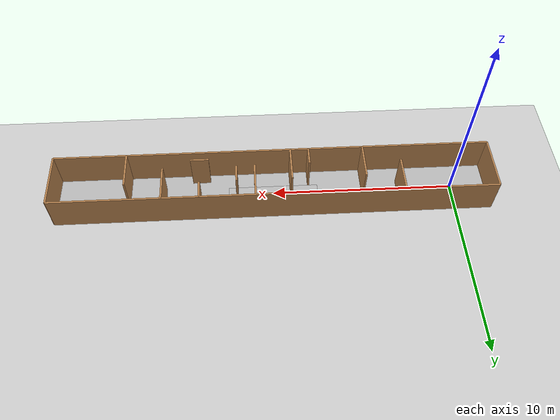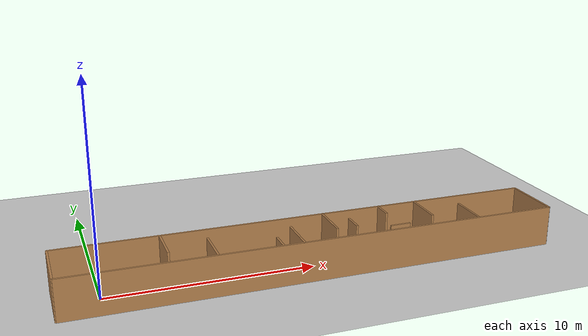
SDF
<sdf version="1.5">
 <world name="default">
  <physics type="ode">
   <gravity>0 0 -9.8066</gravity>
   <ode>
    <solver>
     <type>quick</type>
     <iters>10</iters>
     <sor>1.3</sor>
     <use_dynamic_moi_rescaling>0</use_dynamic_moi_rescaling>
    </solver>
    <constraints>
     <cfm>0.0</cfm>
     <erp>0.2</erp>
     <contact_max_correcting_vel>100</contact_max_correcting_vel>
     <contact_surface_layer>0.001</contact_surface_layer>
    </constraints>
   </ode>
   <max_step_size>0.004</max_step_size>
   <real_time_factor>1.0</real_time_factor>
   <real_time_update_rate>250</real_time_update_rate>
   <magnetic_field>6.0e-6 2.3e-5 -4.2e-5</magnetic_field>
  </physics>
  <light type="directional" name="sun">
   <cast_shadows>false</cast_shadows>
   <pose>0 0 100 0 0 0</pose>
   <diffuse>0.8 0.8 0.8 1</diffuse>
   <specular>0.9 0.9 0.9 1</specular>
   <attenuation>
    <range>1000</range>
    <constant>0.9</constant>
    <linear>0.01</linear>
    <quadratic>0.001</quadratic>
   </attenuation>
   <direction>0.2 0.2 -0.9</direction>
  </light>
  <include><uri>model://ground_plane</uri></include>
  <model name="texture">
   <static>true</static>
   <link name="lawn_ground">
    <pose>10.0 0.0 -0.01 0 0 0</pose>
    <visual name="visual">
     <cast_shadows>false</cast_shadows>
     <geometry><box><size>24 3 0.04</size></box></geometry>
     <material>
      <script>
       <uri>model://lawn_plane/materials/scripts</uri>
       <uri>model://lawn_plane/materials/textures</uri>
       <name>vrc/lawn</name>
      </script>
     </material>
    </visual>
   </link>
   <link name="sysu_logo">
    <pose>10.0 0.0 0.01 0 0 1.57</pose>
    <visual name="visual">
     <cast_shadows>false</cast_shadows>
     <geometry><box><size>1.0 5.0 0.01</size></box></geometry>
     <material><script><uri>model://texture_drl/texture.material</uri><name>ssse_logo</name></script></material>
    </visual>
   </link>
  </model>
  <model name="room_wall">
   <static>true</static>
   <link name="wall_front">
    <pose>22 0 1 0 -0 1.57</pose>
    <inertial><mass>2.0</mass></inertial>
    <collision name="collision"><geometry><box><size>3.0 0.1 2</size></box></geometry></collision>
    <visual name="visual">
     <geometry><box><size>3.0 0.1 2</size></box></geometry>
     <material>
      <script><uri>file://media/materials/scripts/gazebo.material</uri><name>Gazebo/Wood</name></script>
      <ambient>1 1 1 1</ambient>
     </material>
    </visual>
   </link>
   <link name="wall_back">
    <pose>-2 0 1 0 -0 1.57</pose>
    <inertial><mass>2.0</mass></inertial>
    <collision name="collision"><geometry><box><size>3.0 0.1 2</size></box></geometry></collision>
    <visual name="visual">
     <geometry><box><size>3.0 0.1 2</size></box></geometry>
     <material>
      <script><uri>file://media/materials/scripts/gazebo.material</uri><name>Gazebo/Wood</name></script>
      <ambient>1 1 1 1</ambient>
     </material>
    </visual>
   </link>
   <link name="wall_left">
    <pose>10 1.5 1 0 -0 0</pose>
    <inertial><mass>2.0</mass></inertial>
    <collision name="collision"><geometry><box><size>24.0 0.1 2</size></box></geometry></collision>
    <visual name="visual">
     <geometry><box><size>24.0 0.1 2</size></box></geometry>
     <material>
      <script><uri>file://media/materials/scripts/gazebo.material</uri><name>Gazebo/Wood</name></script>
      <ambient>1 1 1 1</ambient>
     </material>
    </visual>
   </link>
   <link name="wall_right">
    <pose>10.0 -1.5 1 0 -0 0</pose>
    <inertial><mass>2.0</mass></inertial>
    <collision name="collision"><geometry><box><size>24.0 0.1 2</size></box></geometry></collision>
    <visual name="visual">
     <geometry><box><size>24.0 0.1 2</size></box></geometry>
     <material>
      <script><uri>file://media/materials/scripts/gazebo.material</uri><name>Gazebo/Wood</name></script>
      <ambient>1 1 1 1</ambient>
     </material>
    </visual>
   </link>
  </model>
  <model name="obs_wall">
   <static>true</static>
   <link name="wall_1">
    <pose>3 0.5 1 0 -0 1.57</pose>
    <inertial><mass>2.0</mass></inertial>
    <collision name="collision"><geometry><box><size>2.0 0.1 2</size></box></geometry></collision>
    <visual name="visual">
     <geometry><box><size>2.0 0.1 2</size></box></geometry>
     <material>
      <script><uri>file://media/materials/scripts/gazebo.material</uri><name>Gazebo/Wood</name></script>
      <ambient>1 1 1 1</ambient>
     </material>
    </visual>
   </link>
   <link name="wall_2">
    <pose>5.0 -0.5 1 0 -0 1.57</pose>
    <inertial><mass>2.0</mass></inertial>
    <collision name="collision"><geometry><box><size>2.0 0.1 2</size></box></geometry></collision>
    <visual name="visual">
     <geometry><box><size>2.0 0.1 2</size></box></geometry>
     <material>
      <script><uri>file://media/materials/scripts/gazebo.material</uri><name>Gazebo/Wood</name></script>
      <ambient>1 1 1 1</ambient>
     </material>
    </visual>
   </link>
   <link name="wall_3">
    <pose>8 -1 1 0 -0 1.57</pose>
    <inertial><mass>2.0</mass></inertial>
    <collision name="collision"><geometry><box><size>1.0 0.1 2</size></box></geometry></collision>
    <visual name="visual">
     <geometry><box><size>1.0 0.1 2</size></box></geometry>
     <material>
      <script><uri>file://media/materials/scripts/gazebo.material</uri><name>Gazebo/Wood</name></script>
      <ambient>1 1 1 1</ambient>
     </material>
    </visual>
   </link>
   <link name="wall_4">
    <pose>9.0 -0.5 1 0 -0 1.57</pose>
    <inertial><mass>2.0</mass></inertial>
    <collision name="collision"><geometry><box><size>2.0 0.1 2</size></box></geometry></collision>
    <visual name="visual">
     <geometry><box><size>2.0 0.1 2</size></box></geometry>
     <material>
      <script><uri>file://media/materials/scripts/gazebo.material</uri><name>Gazebo/Wood</name></script>
      <ambient>1 1 1 1</ambient>
     </material>
    </visual>
   </link>
   <link name="wall_5">
    <pose>11 0.5 1 0 -0 1.57</pose>
    <inertial><mass>2.0</mass></inertial>
    <collision name="collision"><geometry><box><size>2.0 0.1 2</size></box></geometry></collision>
    <visual name="visual">
     <geometry><box><size>2.0 0.1 2</size></box></geometry>
     <material>
      <script><uri>file://media/materials/scripts/gazebo.material</uri><name>Gazebo/Wood</name></script>
      <ambient>1 1 1 1</ambient>
     </material>
    </visual>
   </link>
   <link name="wall_6">
    <pose>14 1 1 0 -0 1.57</pose>
    <inertial><mass>2.0</mass></inertial>
    <collision name="collision"><geometry><box><size>1.0 0.1 2</size></box></geometry></collision>
    <visual name="visual">
     <geometry><box><size>1.0 0.1 2</size></box></geometry>
     <material>
      <script><uri>file://media/materials/scripts/gazebo.material</uri><name>Gazebo/Wood</name></script>
      <ambient>1 1 1 1</ambient>
     </material>
    </visual>
   </link>
   <link name="wall_7">
    <pose>16 0.5 1 0 -0 1.57</pose>
    <inertial><mass>2.0</mass></inertial>
    <collision name="collision"><geometry><box><size>2.0 0.1 2</size></box></geometry></collision>
    <visual name="visual">
     <geometry><box><size>2.0 0.1 2</size></box></geometry>
     <material>
      <script><uri>file://media/materials/scripts/gazebo.material</uri><name>Gazebo/Wood</name></script>
      <ambient>1 1 1 1</ambient>
     </material>
    </visual>
   </link>
   <link name="wall_8">
    <pose>18.0 -0.5 1 0 -0 1.57</pose>
    <inertial><mass>2.0</mass></inertial>
    <collision name="collision"><geometry><box><size>2.0 0.1 2</size></box></geometry></collision>
    <visual name="visual">
     <geometry><box><size>2.0 0.1 2</size></box></geometry>
     <material>
      <script><uri>file://media/materials/scripts/gazebo.material</uri><name>Gazebo/Wood</name></script>
      <ambient>1 1 1 1</ambient>
     </material>
    </visual>
   </link>
   <link name="wall_9">
    <pose>12.0 0 1 0 -0 1.57</pose>
    <inertial><mass>2.0</mass></inertial>
    <collision name="collision"><geometry><box><size>1.0 0.1 2</size></box></geometry></collision>
    <visual name="visual">
     <geometry><box><size>1.0 0.1 2</size></box></geometry>
     <material>
      <script><uri>file://media/materials/scripts/gazebo.material</uri><name>Gazebo/Wood</name></script>
      <ambient>1 1 1 1</ambient>
     </material>
    </visual>
   </link>
   <link name="wall_10">
    <pose>14.0 -1 1 0 -0 0</pose>
    <inertial><mass>2.0</mass></inertial>
    <collision name="collision"><geometry><box><size>1.0 0.1 2</size></box></geometry></collision>
    <visual name="visual">
     <geometry><box><size>1.0 0.1 2</size></box></geometry>
     <material>
      <script><uri>file://media/materials/scripts/gazebo.material</uri><name>Gazebo/Wood</name></script>
      <ambient>1 1 1 1</ambient>
     </material>
    </visual>
   </link>
  </model>
 </world>
</sdf>
